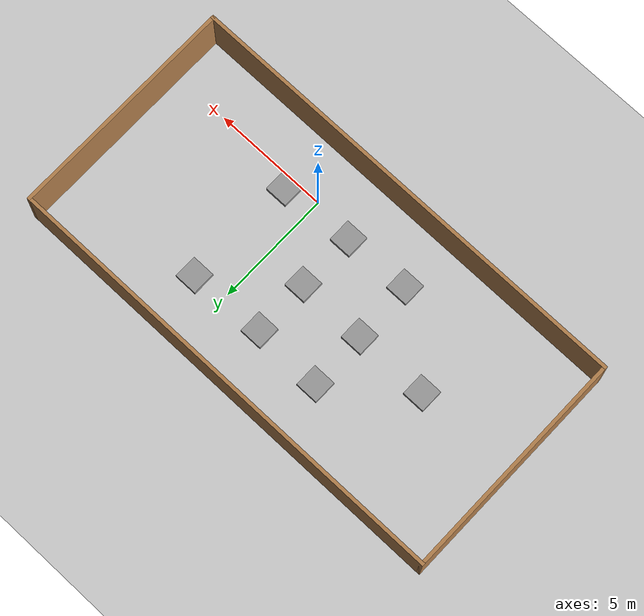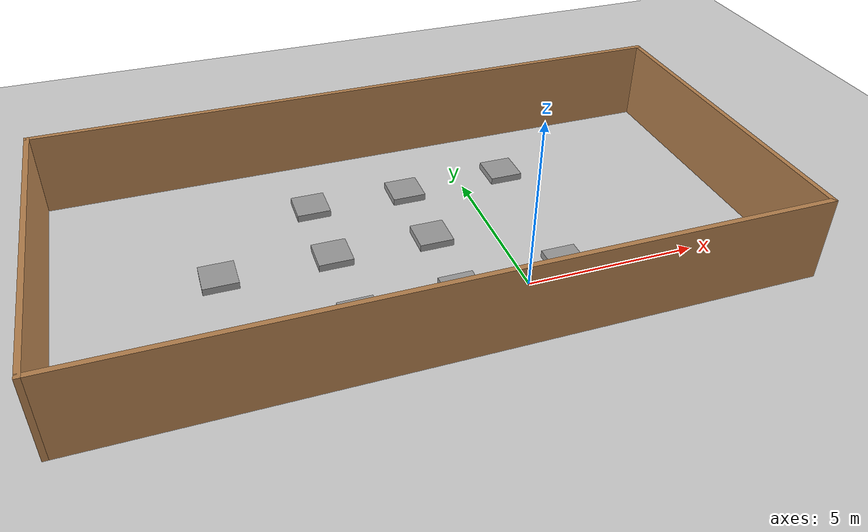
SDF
<sdf version="1.7">
 <world name="default">
  <light name="sun" type="directional">
   <pose>0 0 10 0 -0 0</pose>
   <diffuse>0.8 0.8 0.8 1</diffuse>
   <specular>0.2 0.2 0.2 1</specular>
   <attenuation>
    <range>1000</range>
    <constant>0.9</constant>
    <linear>0.01</linear>
    <quadratic>0.001</quadratic>
   </attenuation>
   <direction>-0.5 0.1 -0.9</direction>
   <spot><inner_angle>0</inner_angle><outer_angle>0</outer_angle><falloff>0</falloff></spot>
  </light>
  <model name="ground_plane">
   <static>1</static>
   <link name="link">
    <collision name="collision">
     <geometry><plane><normal>0 0 1</normal><size>100 100</size></plane></geometry>
     <surface><friction><ode><mu>100</mu><mu2>50</mu2></ode></friction></surface>
    </collision>
    <visual name="visual">
     <cast_shadows>0</cast_shadows>
     <geometry><plane><normal>0 0 1</normal><size>100 100</size></plane></geometry>
     <material>
      <script><uri>file://media/materials/scripts/gazebo.material</uri><name>Gazebo/Grey</name></script>
     </material>
    </visual>
   </link>
  </model>
  <gravity>0 0 -9.8</gravity>
  <magnetic_field>6e-06 2.3e-05 -4.2e-05</magnetic_field>
  <atmosphere type="adiabatic"/>
  <physics type="ode">
   <max_step_size>0.001</max_step_size>
   <real_time_factor>1</real_time_factor>
   <real_time_update_rate>1000</real_time_update_rate>
  </physics>
  <scene><ambient>0.4 0.4 0.4 1</ambient><background>0.7 0.7 0.7 1</background><shadows>1</shadows></scene>
  <audio><device>default</device></audio>
  <spherical_coordinates>
   <surface_model>EARTH_WGS84</surface_model>
   <latitude_deg>0</latitude_deg>
   <longitude_deg>0</longitude_deg>
   <elevation>0</elevation>
   <heading_deg>0</heading_deg>
  </spherical_coordinates>
  <model name="demo_project">
   <pose>-2.48264 2.8447 0 0 -0 0</pose>
   <link name="Wall_5">
    <collision name="Wall_5_Collision">
     <geometry><box><size>20 0.15 2.5</size></box></geometry>
     <pose>0 0 1.25 0 -0 0</pose>
    </collision>
    <visual name="Wall_5_Visual">
     <pose>0 0 1.25 0 -0 0</pose>
     <geometry><box><size>20 0.15 2.5</size></box></geometry>
     <material>
      <script><uri>file://media/materials/scripts/gazebo.material</uri><name>Gazebo/Wood</name></script>
      <ambient>1 1 1 1</ambient>
     </material>
     <meta><layer>0</layer></meta>
    </visual>
    <pose>0 4.925 0 0 -0 0</pose>
   </link>
   <link name="Wall_6">
    <collision name="Wall_6_Collision">
     <geometry><box><size>10 0.15 2.5</size></box></geometry>
     <pose>0 0 1.25 0 -0 0</pose>
    </collision>
    <visual name="Wall_6_Visual">
     <pose>0 0 1.25 0 -0 0</pose>
     <geometry><box><size>10 0.15 2.5</size></box></geometry>
     <material>
      <script><uri>file://media/materials/scripts/gazebo.material</uri><name>Gazebo/Wood</name></script>
      <ambient>1 1 1 1</ambient>
     </material>
     <meta><layer>0</layer></meta>
    </visual>
    <pose>9.925 -0 0 0 -0 -1.5708</pose>
   </link>
   <link name="Wall_7">
    <collision name="Wall_7_Collision">
     <geometry><box><size>20 0.15 2.5</size></box></geometry>
     <pose>0 0 1.25 0 -0 0</pose>
    </collision>
    <visual name="Wall_7_Visual">
     <pose>0 0 1.25 0 -0 0</pose>
     <geometry><box><size>20 0.15 2.5</size></box></geometry>
     <material>
      <script><uri>file://media/materials/scripts/gazebo.material</uri><name>Gazebo/Wood</name></script>
      <ambient>1 1 1 1</ambient>
     </material>
     <meta><layer>0</layer></meta>
    </visual>
    <pose>0 -4.925 0 0 -0 3.14159</pose>
   </link>
   <link name="Wall_8">
    <collision name="Wall_8_Collision">
     <geometry><box><size>10 0.15 2.5</size></box></geometry>
     <pose>0 0 1.25 0 -0 0</pose>
    </collision>
    <visual name="Wall_8_Visual">
     <pose>0 0 1.25 0 -0 0</pose>
     <geometry><box><size>10 0.15 2.5</size></box></geometry>
     <material>
      <script><uri>file://media/materials/scripts/gazebo.material</uri><name>Gazebo/Wood</name></script>
      <ambient>1 1 1 1</ambient>
     </material>
     <meta><layer>0</layer></meta>
    </visual>
    <pose>-9.925 -0 0 0 -0 1.5708</pose>
   </link>
   <static>1</static>
  </model>
  <model name="unit_box">
   <pose>-4.70279 0.187713 0.091374 0 -0 0</pose>
   <link name="link">
    <inertial>
     <mass>1</mass>
     <inertia>
      <ixx>0.166667</ixx>
      <ixy>0</ixy>
      <ixz>0</ixz>
      <iyy>0.166667</iyy>
      <iyz>0</iyz>
      <izz>0.166667</izz>
     </inertia>
    </inertial>
    <collision name="collision"><geometry><box><size>1 1 0.182748</size></box></geometry></collision>
    <visual name="visual">
     <geometry><box><size>1 1 0.182748</size></box></geometry>
     <material>
      <script><name>Gazebo/Grey</name><uri>file://media/materials/scripts/gazebo.material</uri></script>
     </material>
    </visual>
   </link>
  </model>
  <model name="unit_box_clone">
   <pose>-1.85272 0.282316 0.104474 0 -0 0</pose>
   <link name="link">
    <inertial>
     <mass>1</mass>
     <inertia>
      <ixx>0.166667</ixx>
      <ixy>0</ixy>
      <ixz>0</ixz>
      <iyy>0.166667</iyy>
      <iyz>0</iyz>
      <izz>0.166667</izz>
     </inertia>
    </inertial>
    <collision name="collision"><geometry><box><size>1 1 0.208948</size></box></geometry></collision>
    <visual name="visual">
     <geometry><box><size>1 1 0.208948</size></box></geometry>
     <material>
      <script><name>Gazebo/Grey</name><uri>file://media/materials/scripts/gazebo.material</uri></script>
     </material>
    </visual>
   </link>
  </model>
  <model name="unit_box_clone_0">
   <pose>1.30489 0.486763 0.104474 0 -0 0</pose>
   <link name="link">
    <inertial>
     <mass>1</mass>
     <inertia>
      <ixx>0.166667</ixx>
      <ixy>0</ixy>
      <ixz>0</ixz>
      <iyy>0.166667</iyy>
      <iyz>0</iyz>
      <izz>0.166667</izz>
     </inertia>
    </inertial>
    <collision name="collision"><geometry><box><size>1 1 0.208948</size></box></geometry></collision>
    <visual name="visual">
     <geometry><box><size>1 1 0.208948</size></box></geometry>
     <material>
      <script><name>Gazebo/Grey</name><uri>file://media/materials/scripts/gazebo.material</uri></script>
     </material>
    </visual>
   </link>
  </model>
  <model name="unit_box_clone_1">
   <pose>-4.76999 2.78304 0.104474 0 -0 0</pose>
   <link name="link">
    <inertial>
     <mass>1</mass>
     <inertia>
      <ixx>0.166667</ixx>
      <ixy>0</ixy>
      <ixz>0</ixz>
      <iyy>0.166667</iyy>
      <iyz>0</iyz>
      <izz>0.166667</izz>
     </inertia>
    </inertial>
    <collision name="collision"><geometry><box><size>1 1 0.208948</size></box></geometry></collision>
    <visual name="visual">
     <geometry><box><size>1 1 0.208948</size></box></geometry>
     <material>
      <script><name>Gazebo/Grey</name><uri>file://media/materials/scripts/gazebo.material</uri></script>
     </material>
    </visual>
   </link>
  </model>
  <model name="unit_box_clone_2">
   <pose>-1.82672 2.76309 0.104474 0 -0 0</pose>
   <link name="link">
    <inertial>
     <mass>1</mass>
     <inertia>
      <ixx>0.166667</ixx>
      <ixy>0</ixy>
      <ixz>0</ixz>
      <iyy>0.166667</iyy>
      <iyz>0</iyz>
      <izz>0.166667</izz>
     </inertia>
    </inertial>
    <collision name="collision"><geometry><box><size>1 1 0.208948</size></box></geometry></collision>
    <visual name="visual">
     <geometry><box><size>1 1 0.208948</size></box></geometry>
     <material>
      <script><name>Gazebo/Grey</name><uri>file://media/materials/scripts/gazebo.material</uri></script>
     </material>
    </visual>
   </link>
  </model>
  <model name="unit_box_clone_3">
   <pose>-7.95154 2.77488 0.104474 0 -0 0</pose>
   <link name="link">
    <inertial>
     <mass>1</mass>
     <inertia>
      <ixx>0.166667</ixx>
      <ixy>0</ixy>
      <ixz>0</ixz>
      <iyy>0.166667</iyy>
      <iyz>0</iyz>
      <izz>0.166667</izz>
     </inertia>
    </inertial>
    <collision name="collision"><geometry><box><size>1 1 0.208948</size></box></geometry></collision>
    <visual name="visual">
     <geometry><box><size>1 1 0.208948</size></box></geometry>
     <material>
      <script><name>Gazebo/Grey</name><uri>file://media/materials/scripts/gazebo.material</uri></script>
     </material>
    </visual>
   </link>
  </model>
  <model name="unit_box_clone_4">
   <pose>-4.81065 5.26289 0.104474 0 -0 0</pose>
   <link name="link">
    <inertial>
     <mass>1</mass>
     <inertia>
      <ixx>0.166667</ixx>
      <ixy>0</ixy>
      <ixz>0</ixz>
      <iyy>0.166667</iyy>
      <iyz>0</iyz>
      <izz>0.166667</izz>
     </inertia>
    </inertial>
    <collision name="collision"><geometry><box><size>1 1 0.208948</size></box></geometry></collision>
    <visual name="visual">
     <geometry><box><size>1 1 0.208948</size></box></geometry>
     <material>
      <script><name>Gazebo/Grey</name><uri>file://media/materials/scripts/gazebo.material</uri></script>
     </material>
    </visual>
   </link>
  </model>
  <model name="unit_box_clone_5">
   <pose>-1.84927 5.19478 0.104474 0 -0 0</pose>
   <link name="link">
    <inertial>
     <mass>1</mass>
     <inertia>
      <ixx>0.166667</ixx>
      <ixy>0</ixy>
      <ixz>0</ixz>
      <iyy>0.166667</iyy>
      <iyz>0</iyz>
      <izz>0.166667</izz>
     </inertia>
    </inertial>
    <collision name="collision"><geometry><box><size>1 1 0.208948</size></box></geometry></collision>
    <visual name="visual">
     <geometry><box><size>1 1 0.208948</size></box></geometry>
     <material>
      <script><name>Gazebo/Grey</name><uri>file://media/materials/scripts/gazebo.material</uri></script>
     </material>
    </visual>
   </link>
  </model>
  <model name="unit_box_clone_6">
   <pose>1.42295 5.34045 0.104474 0 -0 0</pose>
   <link name="link">
    <inertial>
     <mass>1</mass>
     <inertia>
      <ixx>0.166667</ixx>
      <ixy>0</ixy>
      <ixz>0</ixz>
      <iyy>0.166667</iyy>
      <iyz>0</iyz>
      <izz>0.166667</izz>
     </inertia>
    </inertial>
    <collision name="collision"><geometry><box><size>1 1 0.208948</size></box></geometry></collision>
    <visual name="visual">
     <geometry><box><size>1 1 0.208948</size></box></geometry>
     <material>
      <script><name>Gazebo/Grey</name><uri>file://media/materials/scripts/gazebo.material</uri></script>
     </material>
    </visual>
   </link>
  </model>
 </world>
</sdf>
